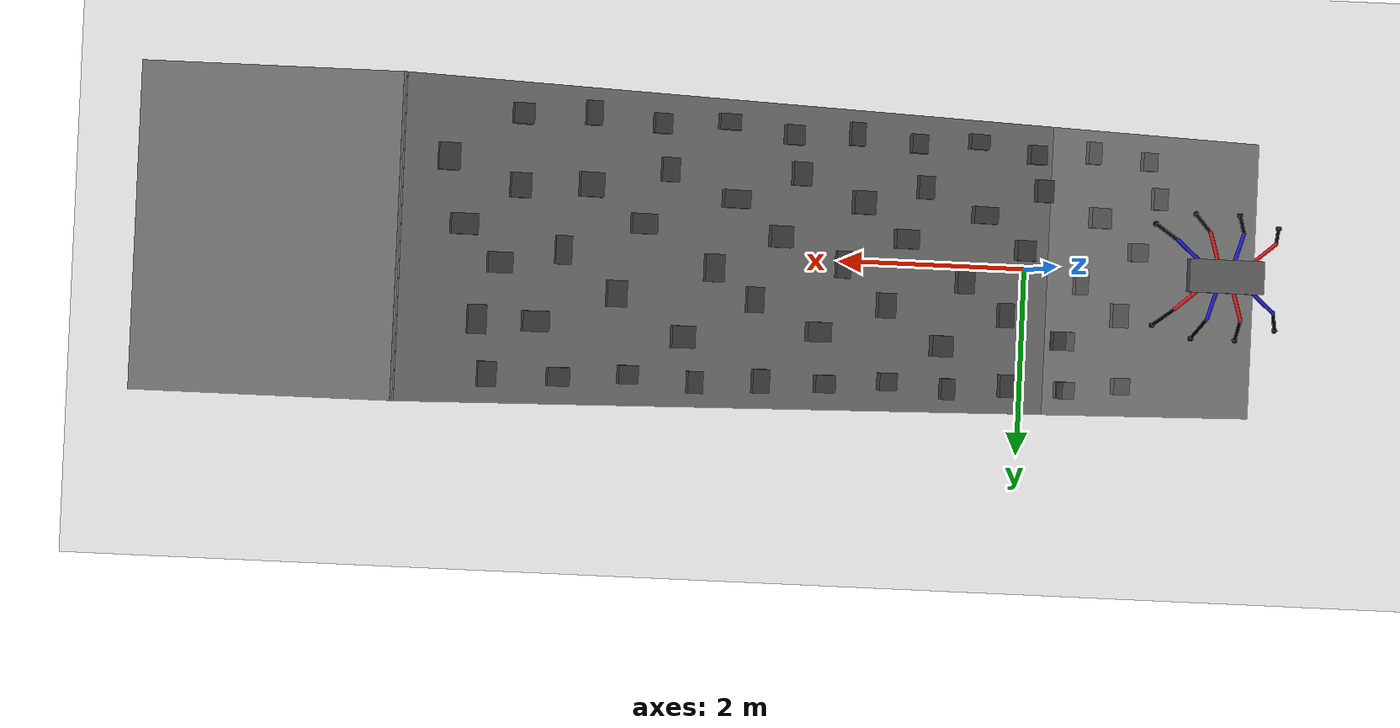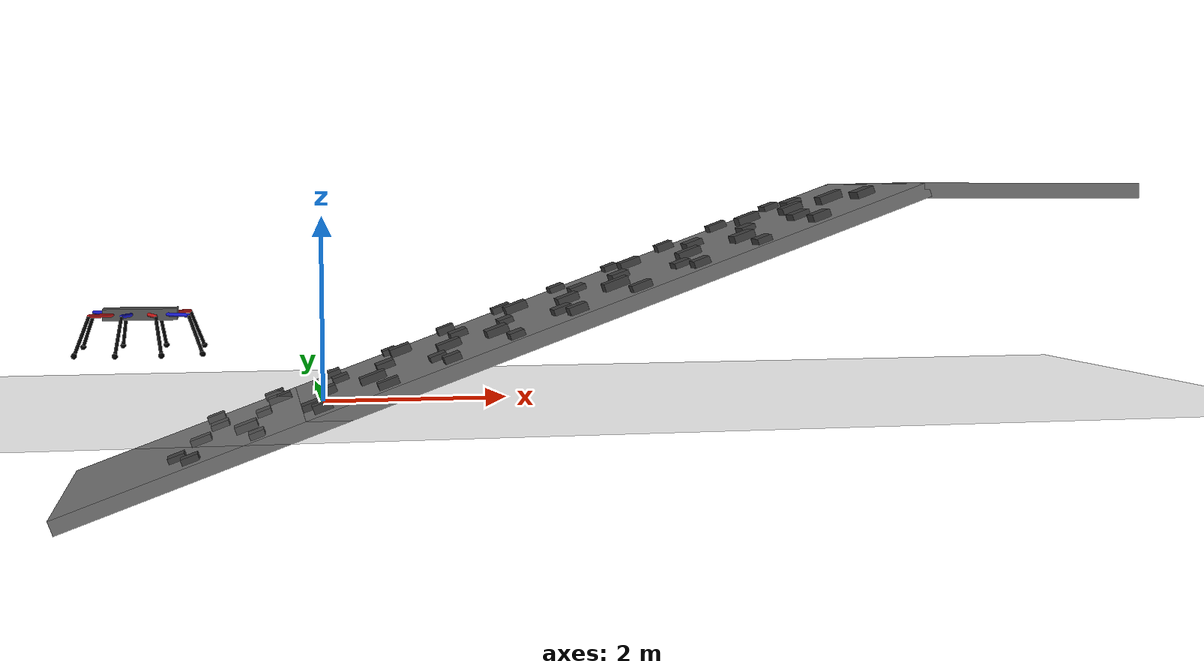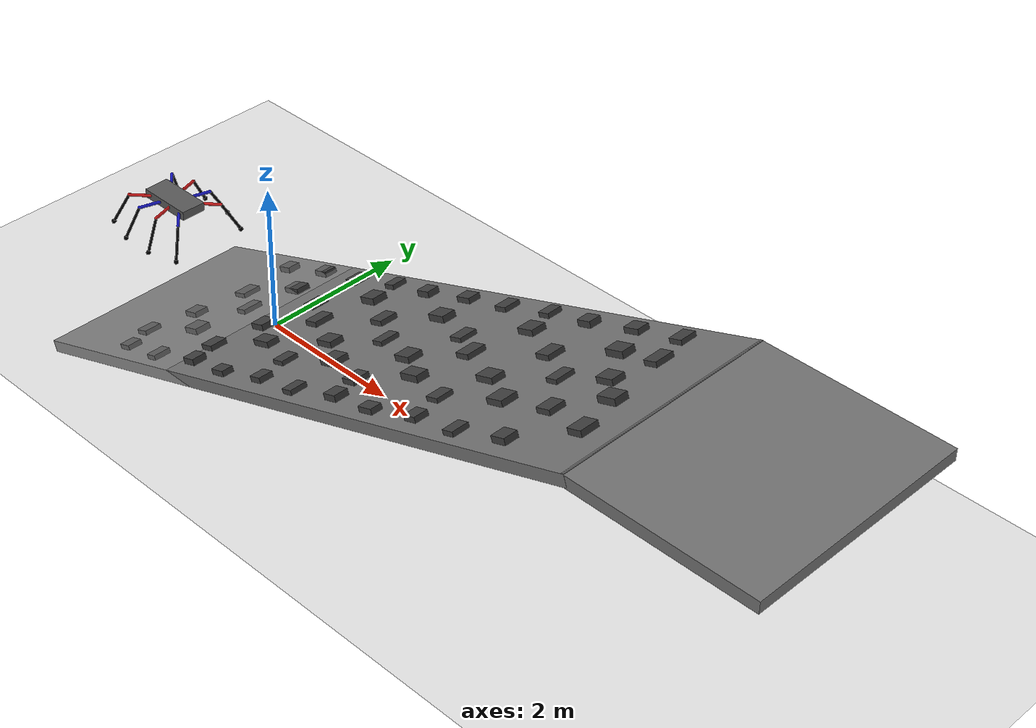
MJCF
<mujoco model="spider_mujoco">

    <compiler angle="degree" coordinate="local"/>
    <option gravity="0 0 -9.81" timestep="0.002" iterations="100"/>

    <default>
        <geom friction="3.0 1.0 1.0" solref="0.008 1" solimp="0.95 0.99 0.001"/>
        <joint damping="1.5"/>
    </default>

    <asset>
        <texture name="grid" type="2d" builtin="checker" width="512" height="512"
                 rgb1="0.75 0.75 0.75" rgb2="0.50 0.50 0.50"/>
        <material name="grid_mat" texture="grid" texrepeat="12 12"/>

        <material name="slope_mat" rgba="0.45 0.45 0.45 1"/>
        <material name="obstacle_mat" rgba="0.25 0.25 0.25 1"/>
        <material name="body_mat" rgba="0.35 0.35 0.35 1"/>
        <material name="group_a_mat" rgba="0.8 0.1 0.1 1"/>
        <material name="group_b_mat" rgba="0.1 0.1 0.8 1"/>
        <material name="lower_leg_mat" rgba="0.02 0.02 0.02 1"/>
        <material name="foot_mat" rgba="0.0 0.0 0.0 1"/>
    </asset>

    <worldbody>

        <geom name="base_floor"
              type="plane"
              size="12 12 0.1"
              material="grid_mat"
              friction="2.0 0.5 0.5"/>

        <light name="top_light"
               pos="0 -2 7"
               dir="0 0 -1"/>

        <camera name="track"
                pos="-2.8 -4.0 2.4"
                xyaxes="0.82 -0.57 0 0.35 0.50 0.79"/>

        <!-- 20 degree uneven slope, positive x is uphill -->
        <body name="slope_body" pos="1.8 0 0.65" euler="0 -20 0">

            <geom name="main_slope"
                  type="box"
                  size="4.8 1.55 0.08"
                  pos="0 0 0"
                  material="slope_mat"
                  friction="4.0 1.2 1.2"
                  mass="0"
                  contype="1"
                  conaffinity="1"/>

            <!-- Dense uneven terrain obstacles across the slope -->
            <geom name="obs_1" type="box" size="0.09 0.12 0.030"
                  pos="-3.50 -0.85 0.120" material="obstacle_mat" friction="5.0 1.5 1.5"/>
            <geom name="obs_2" type="box" size="0.11 0.10 0.035"
                  pos="-3.25 -0.25 0.125" material="obstacle_mat" friction="5.0 1.5 1.5"/>
            <geom name="obs_3" type="box" size="0.10 0.13 0.030"
                  pos="-3.05 0.45 0.120" material="obstacle_mat" friction="5.0 1.5 1.5"/>
            <geom name="obs_4" type="box" size="0.12 0.11 0.040"
                  pos="-2.75 -0.60 0.130" material="obstacle_mat" friction="5.0 1.5 1.5"/>
            <geom name="obs_5" type="box" size="0.08 0.14 0.030"
                  pos="-2.55 0.10 0.120" material="obstacle_mat" friction="5.0 1.5 1.5"/>
            <geom name="obs_6" type="box" size="0.13 0.10 0.035"
                  pos="-2.35 0.75 0.125" material="obstacle_mat" friction="5.0 1.5 1.5"/>

            <geom name="obs_7" type="box" size="0.10 0.12 0.035"
                  pos="-2.05 -0.85 0.125" material="obstacle_mat" friction="5.0 1.5 1.5"/>
            <geom name="obs_8" type="box" size="0.11 0.11 0.040"
                  pos="-1.85 -0.20 0.130" material="obstacle_mat" friction="5.0 1.5 1.5"/>
            <geom name="obs_9" type="box" size="0.09 0.13 0.030"
                  pos="-1.65 0.50 0.120" material="obstacle_mat" friction="5.0 1.5 1.5"/>
            <geom name="obs_10" type="box" size="0.14 0.09 0.040"
                  pos="-1.35 -0.55 0.130" material="obstacle_mat" friction="5.0 1.5 1.5"/>
            <geom name="obs_11" type="box" size="0.10 0.14 0.035"
                  pos="-1.15 0.15 0.125" material="obstacle_mat" friction="5.0 1.5 1.5"/>
            <geom name="obs_12" type="box" size="0.12 0.11 0.045"
                  pos="-0.90 0.85 0.135" material="obstacle_mat" friction="5.0 1.5 1.5"/>

            <geom name="obs_13" type="box" size="0.09 0.12 0.030"
                  pos="-0.65 -0.80 0.120" material="obstacle_mat" friction="5.0 1.5 1.5"/>
            <geom name="obs_14" type="box" size="0.13 0.10 0.040"
                  pos="-0.45 -0.25 0.130" material="obstacle_mat" friction="5.0 1.5 1.5"/>
            <geom name="obs_15" type="box" size="0.10 0.13 0.035"
                  pos="-0.25 0.45 0.125" material="obstacle_mat" friction="5.0 1.5 1.5"/>
            <geom name="obs_16" type="box" size="0.12 0.12 0.040"
                  pos="0.05 -0.60 0.130" material="obstacle_mat" friction="5.0 1.5 1.5"/>
            <geom name="obs_17" type="box" size="0.08 0.14 0.030"
                  pos="0.25 0.05 0.120" material="obstacle_mat" friction="5.0 1.5 1.5"/>
            <geom name="obs_18" type="box" size="0.13 0.10 0.045"
                  pos="0.50 0.75 0.135" material="obstacle_mat" friction="5.0 1.5 1.5"/>

            <geom name="obs_19" type="box" size="0.10 0.12 0.035"
                  pos="0.75 -0.85 0.125" material="obstacle_mat" friction="5.0 1.5 1.5"/>
            <geom name="obs_20" type="box" size="0.12 0.11 0.040"
                  pos="0.95 -0.20 0.130" material="obstacle_mat" friction="5.0 1.5 1.5"/>
            <geom name="obs_21" type="box" size="0.09 0.13 0.030"
                  pos="1.20 0.45 0.120" material="obstacle_mat" friction="5.0 1.5 1.5"/>
            <geom name="obs_22" type="box" size="0.14 0.09 0.045"
                  pos="1.45 -0.55 0.135" material="obstacle_mat" friction="5.0 1.5 1.5"/>
            <geom name="obs_23" type="box" size="0.10 0.14 0.035"
                  pos="1.65 0.15 0.125" material="obstacle_mat" friction="5.0 1.5 1.5"/>
            <geom name="obs_24" type="box" size="0.12 0.11 0.040"
                  pos="1.95 0.85 0.130" material="obstacle_mat" friction="5.0 1.5 1.5"/>

            <geom name="obs_25" type="box" size="0.09 0.12 0.030"
                  pos="2.15 -0.80 0.120" material="obstacle_mat" friction="5.0 1.5 1.5"/>
            <geom name="obs_26" type="box" size="0.13 0.10 0.040"
                  pos="2.40 -0.25 0.130" material="obstacle_mat" friction="5.0 1.5 1.5"/>
            <geom name="obs_27" type="box" size="0.10 0.13 0.035"
                  pos="2.65 0.45 0.125" material="obstacle_mat" friction="5.0 1.5 1.5"/>
            <geom name="obs_28" type="box" size="0.12 0.12 0.040"
                  pos="2.95 -0.60 0.130" material="obstacle_mat" friction="5.0 1.5 1.5"/>
            <geom name="obs_29" type="box" size="0.08 0.14 0.030"
                  pos="3.20 0.05 0.120" material="obstacle_mat" friction="5.0 1.5 1.5"/>
            <geom name="obs_30" type="box" size="0.13 0.10 0.045"
                  pos="3.45 0.75 0.135" material="obstacle_mat" friction="5.0 1.5 1.5"/>

            <geom name="obs_31" type="box" size="0.10 0.12 0.035"
                  pos="3.65 -0.55 0.125" material="obstacle_mat" friction="5.0 1.5 1.5"/>
            <geom name="obs_32" type="box" size="0.12 0.10 0.040"
                  pos="3.82 0.20 0.130" material="obstacle_mat" friction="5.0 1.5 1.5"/>
            <geom name="obs_33" type="box" size="0.09 0.14 0.035"
                  pos="4.02 0.75 0.125" material="obstacle_mat" friction="5.0 1.5 1.5"/>
            <geom name="obs_34" type="box" size="0.13 0.10 0.045"
                  pos="4.18 -0.15 0.135" material="obstacle_mat" friction="5.0 1.5 1.5"/>
            <geom name="obs_35" type="box" size="0.10 0.13 0.040"
                  pos="4.35 -0.78 0.130" material="obstacle_mat" friction="5.0 1.5 1.5"/>

            <geom name="edge_obs_1" type="box" size="0.09 0.10 0.035"
                    pos="-3.35 -1.25 0.110" material="obstacle_mat" friction="5.0 1.5 1.5"/>
            <geom name="edge_obs_2" type="box" size="0.10 0.09 0.040"
                    pos="-3.10 1.22 0.115" material="obstacle_mat" friction="5.0 1.5 1.5"/>
            <geom name="edge_obs_3" type="box" size="0.08 0.12 0.035"
                    pos="-2.65 -1.30 0.110" material="obstacle_mat" friction="5.0 1.5 1.5"/>
            <geom name="edge_obs_4" type="box" size="0.11 0.09 0.040"
                    pos="-2.40 1.28 0.115" material="obstacle_mat" friction="5.0 1.5 1.5"/>
            <geom name="edge_obs_5" type="box" size="0.10 0.10 0.045"
                    pos="-1.95 -1.23 0.120" material="obstacle_mat" friction="5.0 1.5 1.5"/>
            <geom name="edge_obs_6" type="box" size="0.09 0.12 0.035"
                    pos="-1.70 1.25 0.110" material="obstacle_mat" friction="5.0 1.5 1.5"/>
            <geom name="edge_obs_7" type="box" size="0.11 0.08 0.040"
                    pos="-1.25 -1.32 0.115" material="obstacle_mat" friction="5.0 1.5 1.5"/>
            <geom name="edge_obs_8" type="box" size="0.08 0.11 0.035"
                    pos="-1.00 1.30 0.110" material="obstacle_mat" friction="5.0 1.5 1.5"/>
            <geom name="edge_obs_9" type="box" size="0.09 0.10 0.040"
                    pos="-0.55 -1.25 0.115" material="obstacle_mat" friction="5.0 1.5 1.5"/>
            <geom name="edge_obs_10" type="box" size="0.10 0.09 0.045"
                    pos="-0.30 1.24 0.120" material="obstacle_mat" friction="5.0 1.5 1.5"/>
            <geom name="edge_obs_11" type="box" size="0.08 0.12 0.035"
                    pos="0.15 -1.30 0.110" material="obstacle_mat" friction="5.0 1.5 1.5"/>
            <geom name="edge_obs_12" type="box" size="0.11 0.09 0.040"
                    pos="0.40 1.28 0.115" material="obstacle_mat" friction="5.0 1.5 1.5"/>
            <geom name="edge_obs_13" type="box" size="0.10 0.10 0.045"
                    pos="0.85 -1.24 0.120" material="obstacle_mat" friction="5.0 1.5 1.5"/>
            <geom name="edge_obs_14" type="box" size="0.09 0.12 0.035"
                    pos="1.10 1.27 0.110" material="obstacle_mat" friction="5.0 1.5 1.5"/>
            <geom name="edge_obs_15" type="box" size="0.11 0.08 0.040"
                    pos="1.55 -1.32 0.115" material="obstacle_mat" friction="5.0 1.5 1.5"/>
            <geom name="edge_obs_16" type="box" size="0.08 0.11 0.035"
                    pos="1.80 1.30 0.110" material="obstacle_mat" friction="5.0 1.5 1.5"/>
            <geom name="edge_obs_17" type="box" size="0.09 0.10 0.040"
                    pos="2.25 -1.25 0.115" material="obstacle_mat" friction="5.0 1.5 1.5"/>
            <geom name="edge_obs_18" type="box" size="0.10 0.09 0.045"
                    pos="2.50 1.24 0.120" material="obstacle_mat" friction="5.0 1.5 1.5"/>
            <geom name="edge_obs_19" type="box" size="0.08 0.12 0.035"
                    pos="2.95 -1.30 0.110" material="obstacle_mat" friction="5.0 1.5 1.5"/>
            <geom name="edge_obs_20" type="box" size="0.11 0.09 0.040"
                    pos="3.20 1.28 0.115" material="obstacle_mat" friction="5.0 1.5 1.5"/>
            <geom name="edge_obs_21" type="box" size="0.10 0.10 0.045"
                    pos="3.65 -1.24 0.120" material="obstacle_mat" friction="5.0 1.5 1.5"/>
            <geom name="edge_obs_22" type="box" size="0.09 0.12 0.035"
                    pos="3.90 1.27 0.110" material="obstacle_mat" friction="5.0 1.5 1.5"/>

        </body>

        <!-- Flat landing platform at the top -->
        <body name="top_platform_body" pos="7.50 0 2.28">
            <geom name="top_platform"
                  type="box"
                  size="1.25 1.55 0.08"
                  pos="0 0 0"
                  material="slope_mat"
                  friction="4.0 1.2 1.2"
                  mass="0"
                  contype="1"
                  conaffinity="1"/>
        </body>

        <!-- Spider starts near the lower part of the slope -->
        <body name="spider_body" pos="-1.9 0 0.98">

            <freejoint name="root_free"/>

            <geom name="body_box"
                  type="box"
                  size="0.38 0.17 0.06"
                  pos="0 0 0"
                  material="body_mat"
                  mass="0.65"
                  friction="1.0 0.3 0.3"/>

            <!-- LEFT SIDE -->
            <body name="L1_coxa_base" pos="0.27 0.15 0">
                <geom name="L1_yaw_mass" type="sphere" size="0.008" rgba="0 0 0 0" mass="0.001" contype="0" conaffinity="0"/>
                <joint name="L1_yaw" type="hinge" axis="0 0 1" range="-70 70"/>
                <body name="L1_pitch_body" pos="0 0 0">
                    <geom name="L1_pitch_mass" type="sphere" size="0.008" rgba="0 0 0 0" mass="0.001" contype="0" conaffinity="0"/>
                    <joint name="L1_pitch" type="hinge" axis="1 0 0" range="-55 55"/>
                    <geom name="L1_coxa_geom" type="capsule" fromto="0 0 0 0.23 0.20 0" size="0.020" material="group_a_mat" mass="0.025"/>
                    <geom name="L1_lower_geom" type="capsule" fromto="0.23 0.20 0 0.37 0.38 -0.39" size="0.018" material="lower_leg_mat" mass="0.035"/>
                    <geom name="L1_foot" type="sphere" pos="0.37 0.38 -0.39" size="0.030" material="foot_mat" mass="0.015" friction="8.0 2.5 2.5"/>
                </body>
            </body>

            <body name="L2_coxa_base" pos="0.09 0.17 0">
                <geom name="L2_yaw_mass" type="sphere" size="0.008" rgba="0 0 0 0" mass="0.001" contype="0" conaffinity="0"/>
                <joint name="L2_yaw" type="hinge" axis="0 0 1" range="-70 70"/>
                <body name="L2_pitch_body" pos="0 0 0">
                    <geom name="L2_pitch_mass" type="sphere" size="0.008" rgba="0 0 0 0" mass="0.001" contype="0" conaffinity="0"/>
                    <joint name="L2_pitch" type="hinge" axis="1 0 0" range="-55 55"/>
                    <geom name="L2_coxa_geom" type="capsule" fromto="0 0 0 0.08 0.27 0" size="0.020" material="group_b_mat" mass="0.025"/>
                    <geom name="L2_lower_geom" type="capsule" fromto="0.08 0.27 0 0.14 0.48 -0.39" size="0.018" material="lower_leg_mat" mass="0.035"/>
                    <geom name="L2_foot" type="sphere" pos="0.14 0.48 -0.39" size="0.030" material="foot_mat" mass="0.015" friction="8.0 2.5 2.5"/>
                </body>
            </body>

            <body name="L3_coxa_base" pos="-0.09 0.17 0">
                <geom name="L3_yaw_mass" type="sphere" size="0.008" rgba="0 0 0 0" mass="0.001" contype="0" conaffinity="0"/>
                <joint name="L3_yaw" type="hinge" axis="0 0 1" range="-70 70"/>
                <body name="L3_pitch_body" pos="0 0 0">
                    <geom name="L3_pitch_mass" type="sphere" size="0.008" rgba="0 0 0 0" mass="0.001" contype="0" conaffinity="0"/>
                    <joint name="L3_pitch" type="hinge" axis="1 0 0" range="-55 55"/>
                    <geom name="L3_coxa_geom" type="capsule" fromto="0 0 0 -0.08 0.27 0" size="0.020" material="group_a_mat" mass="0.025"/>
                    <geom name="L3_lower_geom" type="capsule" fromto="-0.08 0.27 0 -0.14 0.48 -0.39" size="0.018" material="lower_leg_mat" mass="0.035"/>
                    <geom name="L3_foot" type="sphere" pos="-0.14 0.48 -0.39" size="0.030" material="foot_mat" mass="0.015" friction="8.0 2.5 2.5"/>
                </body>
            </body>

            <body name="L4_coxa_base" pos="-0.27 0.15 0">
                <geom name="L4_yaw_mass" type="sphere" size="0.008" rgba="0 0 0 0" mass="0.001" contype="0" conaffinity="0"/>
                <joint name="L4_yaw" type="hinge" axis="0 0 1" range="-70 70"/>
                <body name="L4_pitch_body" pos="0 0 0">
                    <geom name="L4_pitch_mass" type="sphere" size="0.008" rgba="0 0 0 0" mass="0.001" contype="0" conaffinity="0"/>
                    <joint name="L4_pitch" type="hinge" axis="1 0 0" range="-55 55"/>
                    <geom name="L4_coxa_geom" type="capsule" fromto="0 0 0 -0.23 0.20 0" size="0.020" material="group_b_mat" mass="0.025"/>
                    <geom name="L4_lower_geom" type="capsule" fromto="-0.23 0.20 0 -0.37 0.38 -0.39" size="0.018" material="lower_leg_mat" mass="0.035"/>
                    <geom name="L4_foot" type="sphere" pos="-0.37 0.38 -0.39" size="0.030" material="foot_mat" mass="0.015" friction="8.0 2.5 2.5"/>
                </body>
            </body>

            <!-- RIGHT SIDE -->
            <body name="R1_coxa_base" pos="0.27 -0.15 0">
                <geom name="R1_yaw_mass" type="sphere" size="0.008" rgba="0 0 0 0" mass="0.001" contype="0" conaffinity="0"/>
                <joint name="R1_yaw" type="hinge" axis="0 0 1" range="-70 70"/>
                <body name="R1_pitch_body" pos="0 0 0">
                    <geom name="R1_pitch_mass" type="sphere" size="0.008" rgba="0 0 0 0" mass="0.001" contype="0" conaffinity="0"/>
                    <joint name="R1_pitch" type="hinge" axis="1 0 0" range="-55 55"/>
                    <geom name="R1_coxa_geom" type="capsule" fromto="0 0 0 0.23 -0.20 0" size="0.020" material="group_b_mat" mass="0.025"/>
                    <geom name="R1_lower_geom" type="capsule" fromto="0.23 -0.20 0 0.37 -0.38 -0.39" size="0.018" material="lower_leg_mat" mass="0.035"/>
                    <geom name="R1_foot" type="sphere" pos="0.37 -0.38 -0.39" size="0.030" material="foot_mat" mass="0.015" friction="8.0 2.5 2.5"/>
                </body>
            </body>

            <body name="R2_coxa_base" pos="0.09 -0.17 0">
                <geom name="R2_yaw_mass" type="sphere" size="0.008" rgba="0 0 0 0" mass="0.001" contype="0" conaffinity="0"/>
                <joint name="R2_yaw" type="hinge" axis="0 0 1" range="-70 70"/>
                <body name="R2_pitch_body" pos="0 0 0">
                    <geom name="R2_pitch_mass" type="sphere" size="0.008" rgba="0 0 0 0" mass="0.001" contype="0" conaffinity="0"/>
                    <joint name="R2_pitch" type="hinge" axis="1 0 0" range="-55 55"/>
                    <geom name="R2_coxa_geom" type="capsule" fromto="0 0 0 0.08 -0.27 0" size="0.020" material="group_a_mat" mass="0.025"/>
                    <geom name="R2_lower_geom" type="capsule" fromto="0.08 -0.27 0 0.14 -0.48 -0.39" size="0.018" material="lower_leg_mat" mass="0.035"/>
                    <geom name="R2_foot" type="sphere" pos="0.14 -0.48 -0.39" size="0.030" material="foot_mat" mass="0.015" friction="8.0 2.5 2.5"/>
                </body>
            </body>

            <body name="R3_coxa_base" pos="-0.09 -0.17 0">
                <geom name="R3_yaw_mass" type="sphere" size="0.008" rgba="0 0 0 0" mass="0.001" contype="0" conaffinity="0"/>
                <joint name="R3_yaw" type="hinge" axis="0 0 1" range="-70 70"/>
                <body name="R3_pitch_body" pos="0 0 0">
                    <geom name="R3_pitch_mass" type="sphere" size="0.008" rgba="0 0 0 0" mass="0.001" contype="0" conaffinity="0"/>
                    <joint name="R3_pitch" type="hinge" axis="1 0 0" range="-55 55"/>
                    <geom name="R3_coxa_geom" type="capsule" fromto="0 0 0 -0.08 -0.27 0" size="0.020" material="group_b_mat" mass="0.025"/>
                    <geom name="R3_lower_geom" type="capsule" fromto="-0.08 -0.27 0 -0.14 -0.48 -0.39" size="0.018" material="lower_leg_mat" mass="0.035"/>
                    <geom name="R3_foot" type="sphere" pos="-0.14 -0.48 -0.39" size="0.030" material="foot_mat" mass="0.015" friction="8.0 2.5 2.5"/>
                </body>
            </body>

            <body name="R4_coxa_base" pos="-0.27 -0.15 0">
                <geom name="R4_yaw_mass" type="sphere" size="0.008" rgba="0 0 0 0" mass="0.001" contype="0" conaffinity="0"/>
                <joint name="R4_yaw" type="hinge" axis="0 0 1" range="-70 70"/>
                <body name="R4_pitch_body" pos="0 0 0">
                    <geom name="R4_pitch_mass" type="sphere" size="0.008" rgba="0 0 0 0" mass="0.001" contype="0" conaffinity="0"/>
                    <joint name="R4_pitch" type="hinge" axis="1 0 0" range="-55 55"/>
                    <geom name="R4_coxa_geom" type="capsule" fromto="0 0 0 -0.23 -0.20 0" size="0.020" material="group_a_mat" mass="0.025"/>
                    <geom name="R4_lower_geom" type="capsule" fromto="-0.23 -0.20 0 -0.37 -0.38 -0.39" size="0.018" material="lower_leg_mat" mass="0.035"/>
                    <geom name="R4_foot" type="sphere" pos="-0.37 -0.38 -0.39" size="0.030" material="foot_mat" mass="0.015" friction="8.0 2.5 2.5"/>
                </body>
            </body>

        </body>

    </worldbody>

    <actuator>
        <position name="L1_yaw_motor" joint="L1_yaw" kp="95" ctrlrange="-1.22 1.22"/>
        <position name="L1_pitch_motor" joint="L1_pitch" kp="95" ctrlrange="-0.96 0.96"/>
        <position name="L2_yaw_motor" joint="L2_yaw" kp="95" ctrlrange="-1.22 1.22"/>
        <position name="L2_pitch_motor" joint="L2_pitch" kp="95" ctrlrange="-0.96 0.96"/>
        <position name="L3_yaw_motor" joint="L3_yaw" kp="95" ctrlrange="-1.22 1.22"/>
        <position name="L3_pitch_motor" joint="L3_pitch" kp="95" ctrlrange="-0.96 0.96"/>
        <position name="L4_yaw_motor" joint="L4_yaw" kp="95" ctrlrange="-1.22 1.22"/>
        <position name="L4_pitch_motor" joint="L4_pitch" kp="95" ctrlrange="-0.96 0.96"/>

        <position name="R1_yaw_motor" joint="R1_yaw" kp="95" ctrlrange="-1.22 1.22"/>
        <position name="R1_pitch_motor" joint="R1_pitch" kp="95" ctrlrange="-0.96 0.96"/>
        <position name="R2_yaw_motor" joint="R2_yaw" kp="95" ctrlrange="-1.22 1.22"/>
        <position name="R2_pitch_motor" joint="R2_pitch" kp="95" ctrlrange="-0.96 0.96"/>
        <position name="R3_yaw_motor" joint="R3_yaw" kp="95" ctrlrange="-1.22 1.22"/>
        <position name="R3_pitch_motor" joint="R3_pitch" kp="95" ctrlrange="-0.96 0.96"/>
        <position name="R4_yaw_motor" joint="R4_yaw" kp="95" ctrlrange="-1.22 1.22"/>
        <position name="R4_pitch_motor" joint="R4_pitch" kp="95" ctrlrange="-0.96 0.96"/>
    </actuator>

</mujoco>
